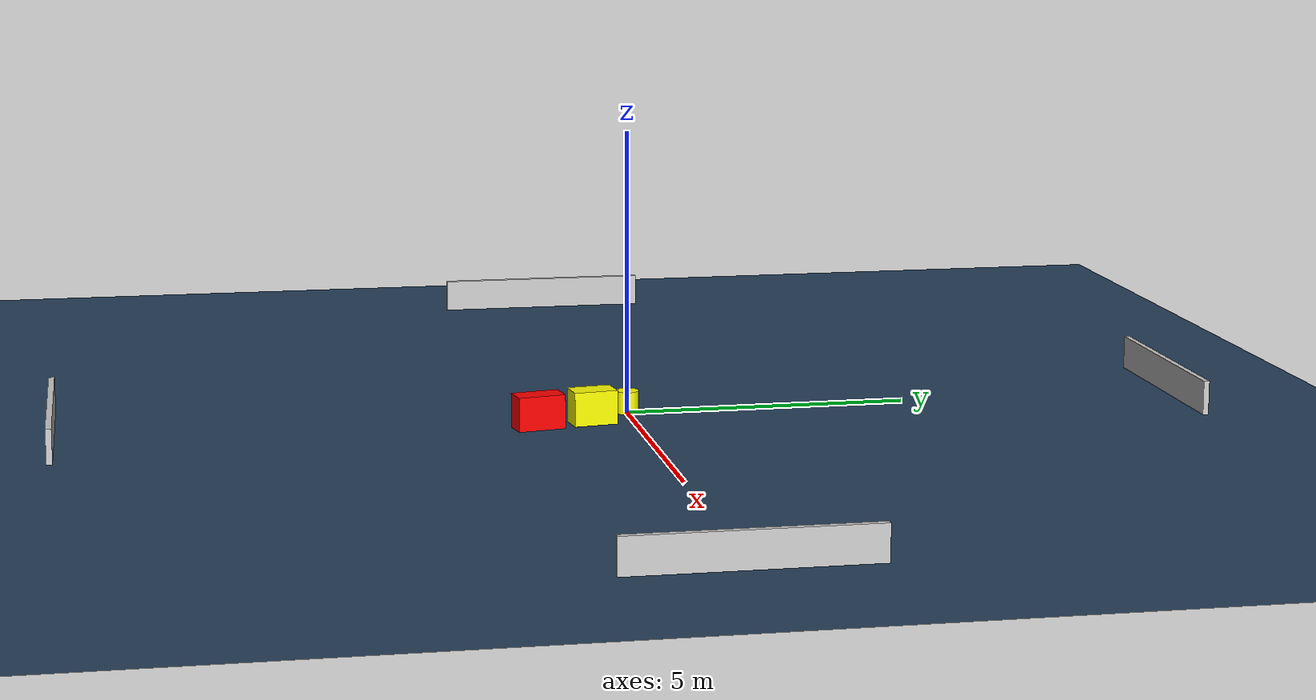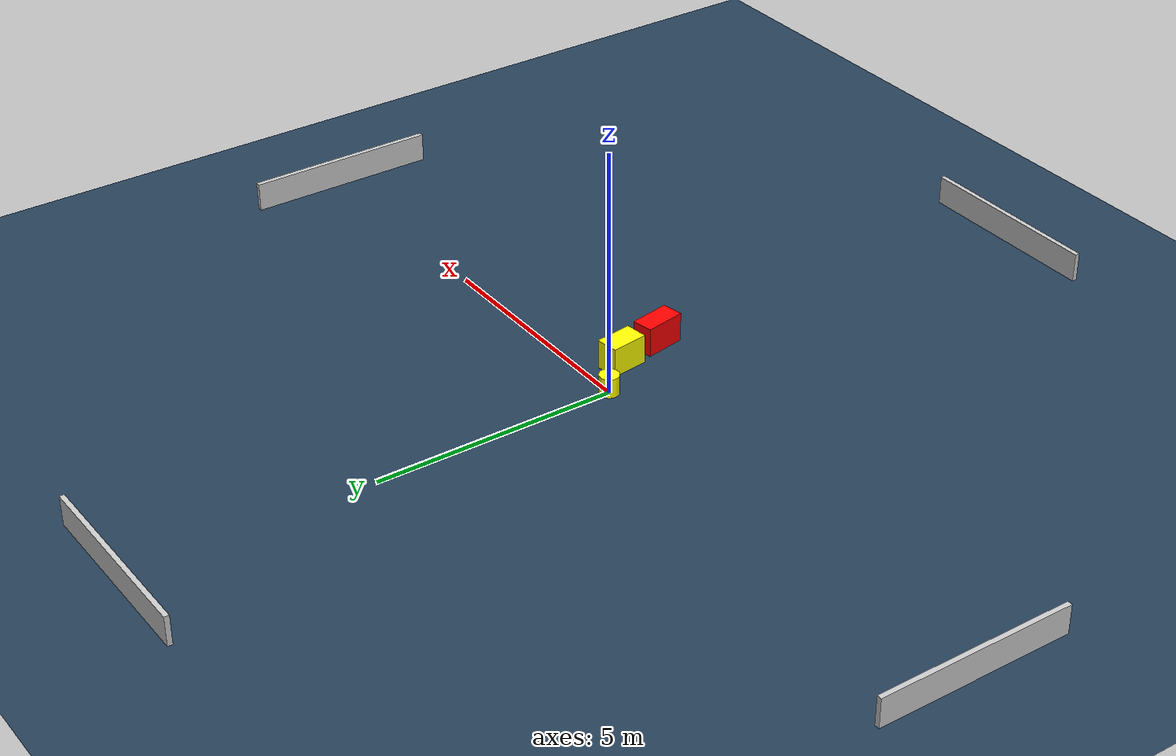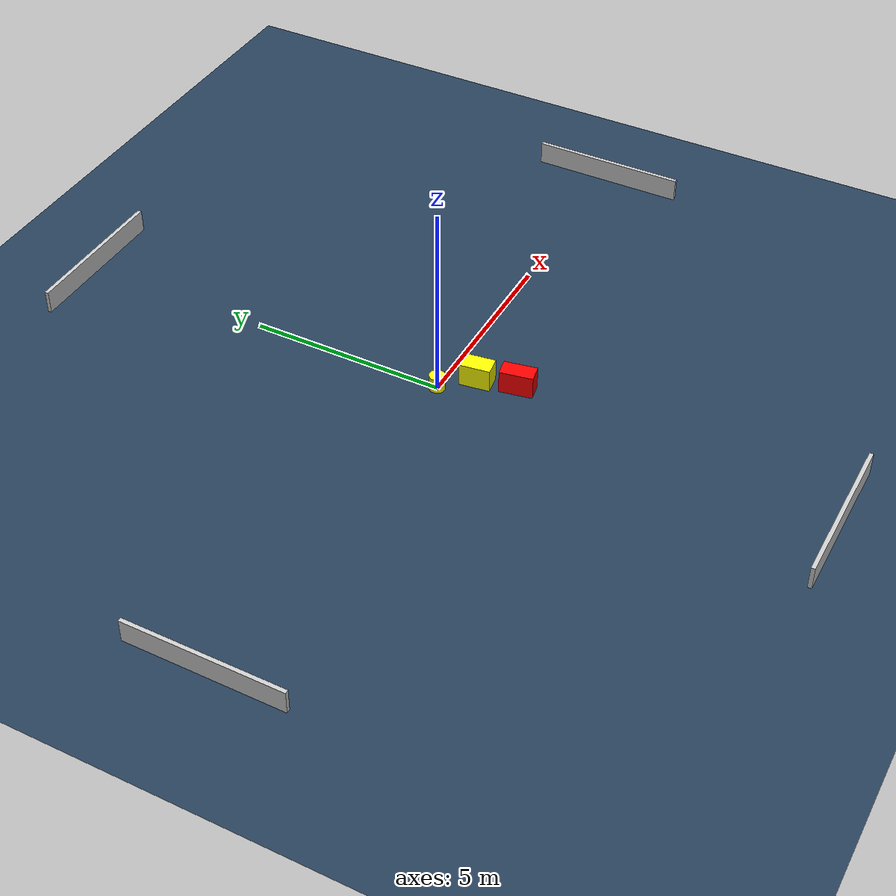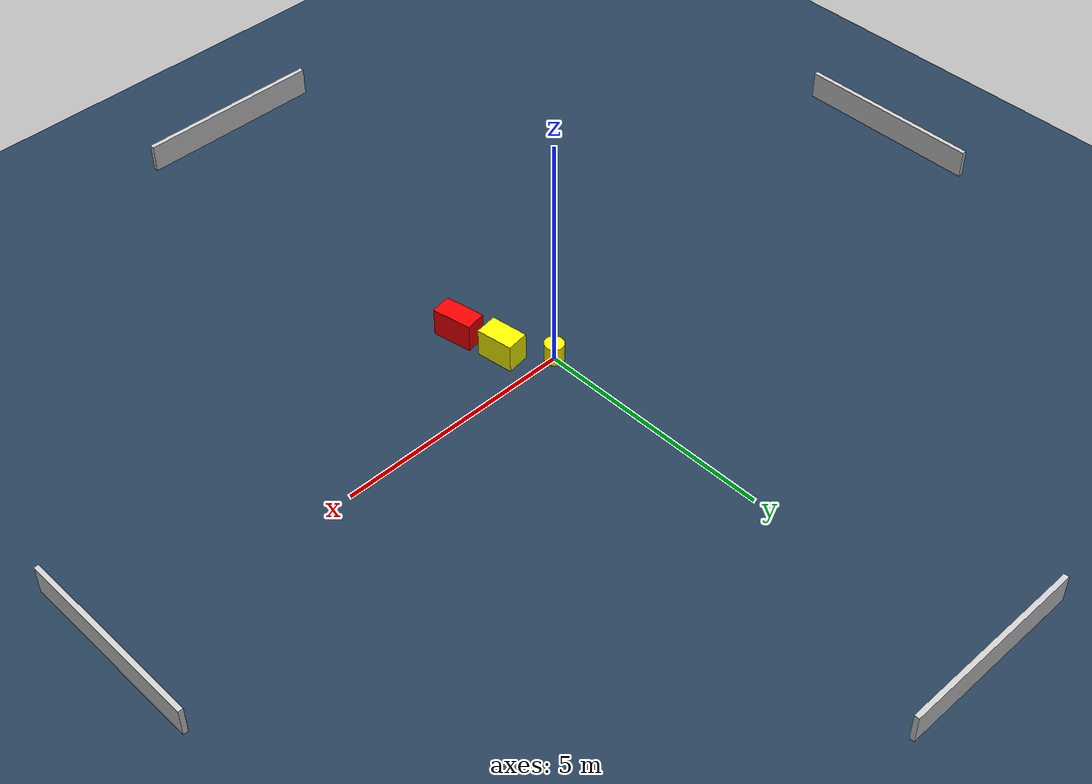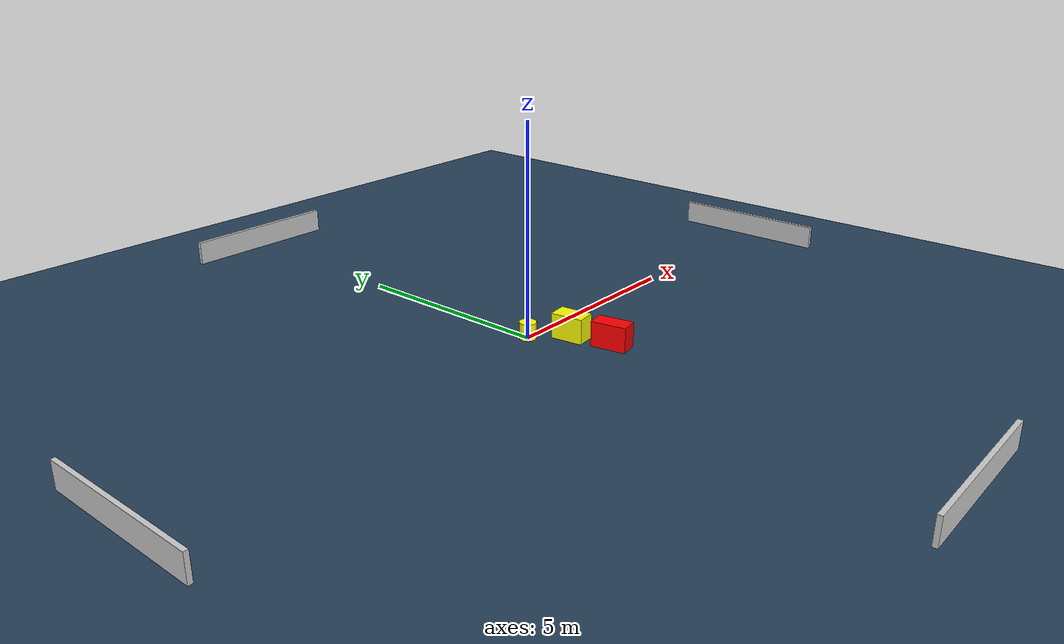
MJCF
<?xml version="1.0" ?>
<mujoco model="generated_environment">
  <option timestep="0.01" integrator="RK4" cone="elliptic"/>
  <default>
    <geom density="1"/>
  </default>
  <asset>
    <texture builtin="gradient" height="3072" name="skybox" rgb1="0.3 0.5 0.7" rgb2="0 0 0" type="skybox" width="512"/>
    <texture builtin="checker" height="300" name="groundplane" rgb1="0.2 0.3 0.4" rgb2="0.1 0.2 0.3" type="2d" width="300"/>
    <material name="groundplane" reflectance="0.2" texrepeat="5 5" texture="groundplane"/>
  </asset>
  <worldbody>
    <light dir="0 0 -1" directional="true" pos="0 0 1.5"/>
    <geom condim="3" friction="0.5 0.005 0.001" material="groundplane" name="floor" pos="0 0 0" size="0 0 0.05" type="plane"/>
    <body name="walls">
      <geom name="wall_1" condim="4" pos="-10.0 0.0 0.3" rgba="0.800000011920929 0.800000011920929 0.800000011920929 1.0" size="0.05 2.0 0.3" type="box"/>
      <geom name="wall_2" condim="4" pos="10.0 0.0 0.3" rgba="0.800000011920929 0.800000011920929 0.800000011920929 1.0" size="0.05 2.0 0.3" type="box"/>
      <geom name="wall_3" condim="4" pos="0.0 -10.0 0.3" rgba="0.800000011920929 0.800000011920929 0.800000011920929 1.0" size="2.0 0.05 0.3" type="box"/>
      <geom name="wall_4" condim="4" pos="0.0 10.0 0.3" rgba="0.800000011920929 0.800000011920929 0.800000011920929 1.0" size="2.0 0.05 0.3" type="box"/>
    </body>
    <body name="robot">
      <joint name="joint_x" type="slide" pos="0 0 0" axis="1 0 0"/>
      <joint name="joint_y" type="slide" pos="0 0 0" axis="0 1 0"/>
      <geom name="robot" type="cylinder" pos="0.0 0.0 0.2" size="0.2 0.2 0.0" mass="5.0" friction="1.0 0.005 0.0001" condim="4" rgba="1.0 1.0 0.0 1.0"/>
    </body>
    <body name="obstacle_1_movable">
      <geom name="obstacle_1_movable" condim="4" pos="0.6521850048391005 -0.7409342436013441 0.3" euler="0 0 7.739563237922282" friction="0.0 0.005 0.001" rgba="1.0 1.0 0.0 1.0" size="0.23547795482480616 0.3870157271853635 0.3" type="box" mass="0.1"/>
      <joint type="free"/>
    </body>
    <body name="obstacle_2_static">
      <geom name="obstacle_2_static" condim="4" pos="0.8612259137249195 -1.7237576240432473 0.3" euler="0 0 10.369506322007105" friction="0.0 0.005 0.001" rgba="1.0 0.0 0.0 1.0" size="0.21807301511729252 0.42065587237308155 0.3" type="box"/>
    </body>
  </worldbody>
  <actuator>
    <motor name="actuator_x" joint="joint_x" gear="1" ctrlrange="-1 1"/>
    <motor name="actuator_y" joint="joint_y" gear="1" ctrlrange="-1 1"/>
  </actuator>
</mujoco>
